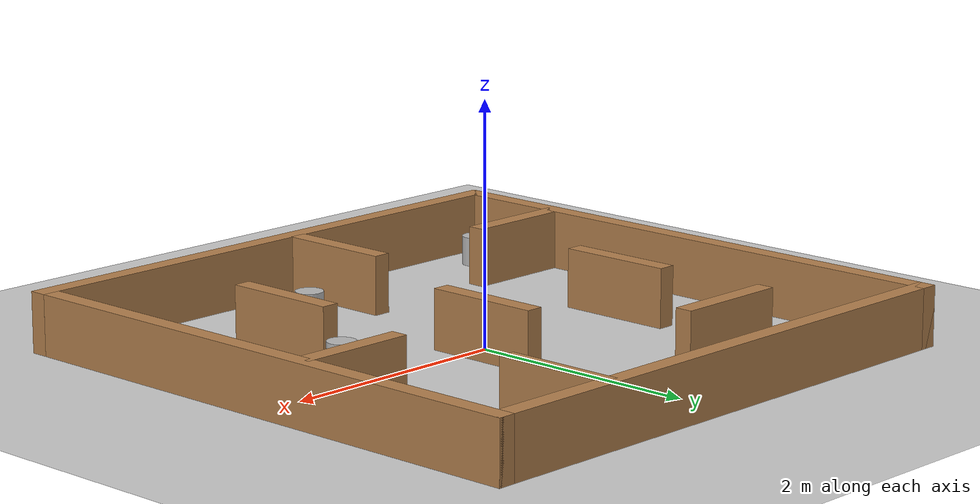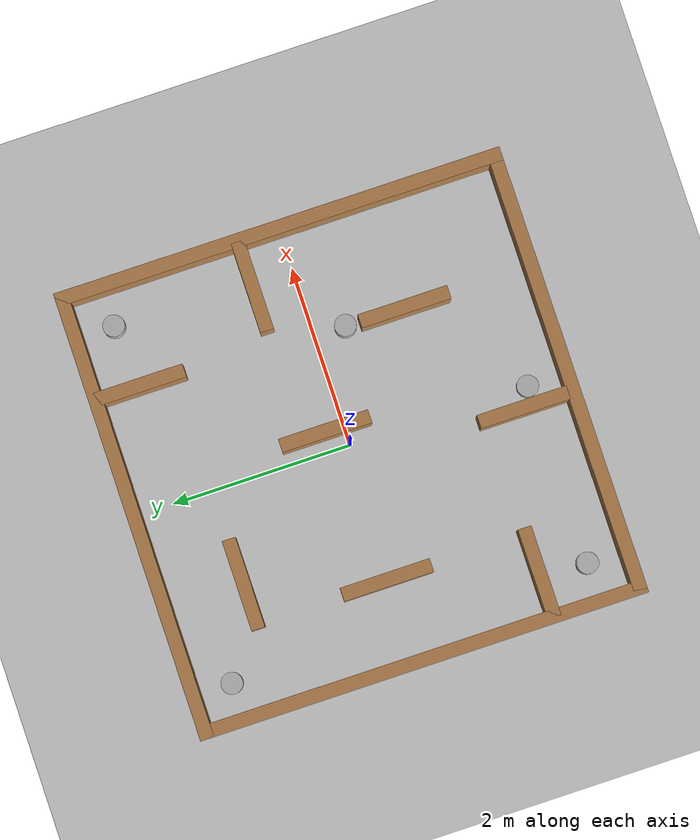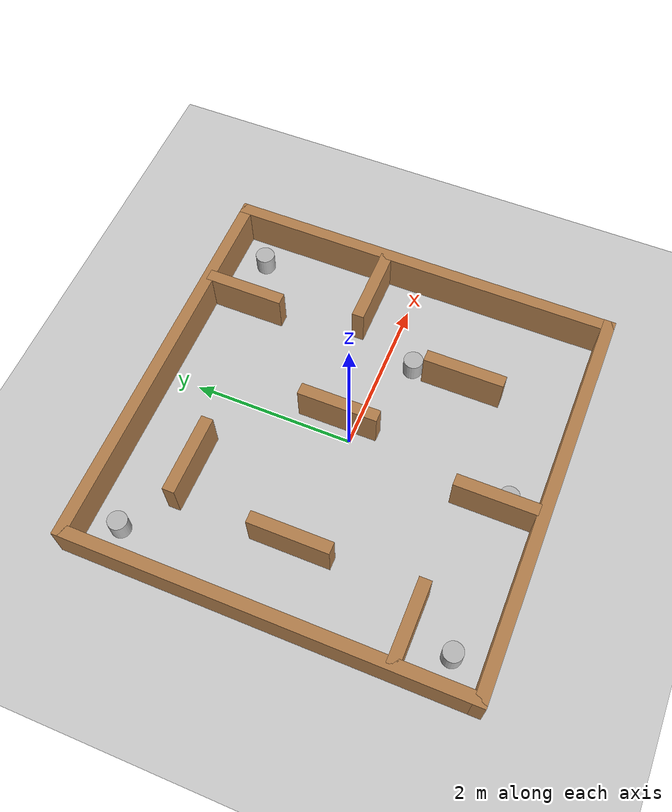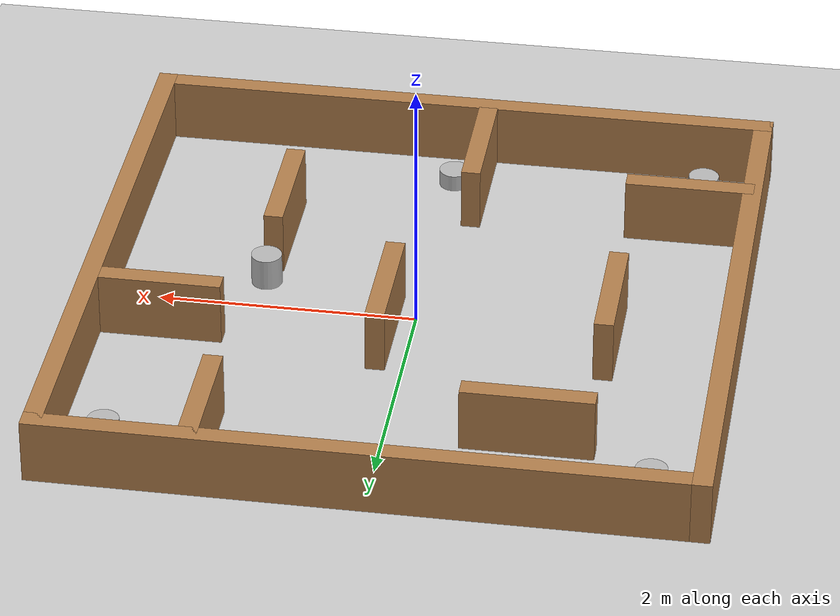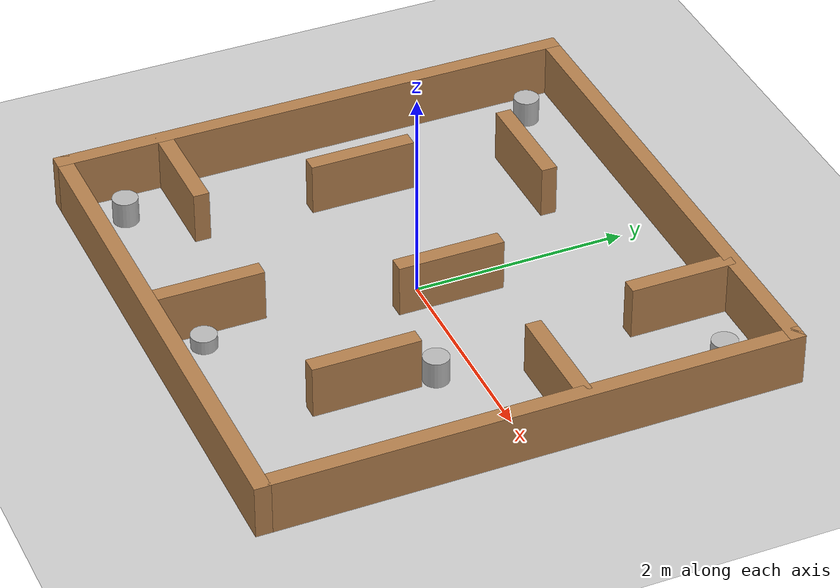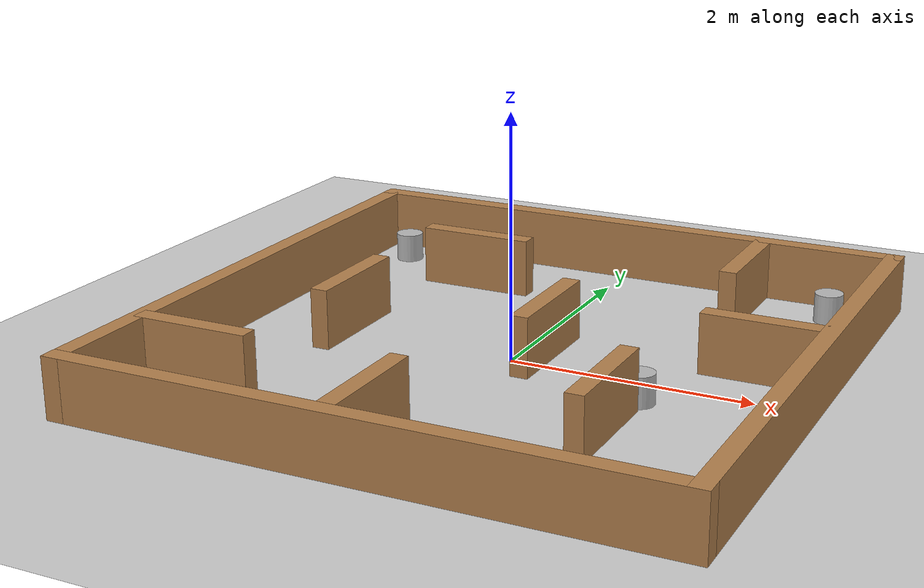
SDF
<sdf version="1.6">
 <world name="default">
  <light name="sun" type="directional">
   <pose>0 0 10 0 -0 0</pose>
   <diffuse>0.8 0.8 0.8 1</diffuse>
   <specular>0.2 0.2 0.2 1</specular>
   <attenuation>
    <range>1000</range>
    <constant>0.9</constant>
    <linear>0.01</linear>
    <quadratic>0.001</quadratic>
   </attenuation>
   <direction>-0.5 0.1 -0.9</direction>
  </light>
  <model name="ground_plane">
   <static>1</static>
   <link name="link">
    <collision name="collision">
     <geometry><plane><normal>0 0 1</normal><size>100 100</size></plane></geometry>
     <surface><friction><ode><mu>100</mu><mu2>50</mu2></ode></friction></surface>
    </collision>
    <visual name="visual">
     <cast_shadows>0</cast_shadows>
     <geometry><plane><normal>0 0 1</normal><size>100 100</size></plane></geometry>
     <material>
      <script><uri>file://media/materials/scripts/gazebo.material</uri><name>Gazebo/Grey</name></script>
     </material>
    </visual>
   </link>
  </model>
  <physics name="default_physics" default="0" type="ode">
   <real_time_update_rate>1000</real_time_update_rate>
   <max_step_size>0.001</max_step_size>
   <real_time_factor>1</real_time_factor>
   <ode>
    <solver>
     <type>quick</type>
     <iters>150</iters>
     <precon_iters>0</precon_iters>
     <sor>1.4</sor>
     <use_dynamic_moi_rescaling>1</use_dynamic_moi_rescaling>
    </solver>
    <constraints>
     <cfm>1e-05</cfm>
     <erp>0.2</erp>
     <contact_max_correcting_vel>2000</contact_max_correcting_vel>
     <contact_surface_layer>0.01</contact_surface_layer>
    </constraints>
   </ode>
  </physics>
  <model name="turtlebot3_plaza">
   <link name="Wall_0">
    <collision name="Wall_0_Collision">
     <geometry><box><size>5 0.15 0.5</size></box></geometry>
     <pose>0 0 0.25 0 -0 0</pose>
    </collision>
    <visual name="Wall_0_Visual">
     <pose>0 0 0.25 0 -0 0</pose>
     <geometry><box><size>5 0.15 0.5</size></box></geometry>
     <material>
      <script><uri>file://media/materials/scripts/gazebo.material</uri><name>Gazebo/Wood</name></script>
      <ambient>1 1 1 1</ambient>
     </material>
    </visual>
    <pose>-2.425 0 0 0 -0 1.5708</pose>
   </link>
   <link name="Wall_11">
    <collision name="Wall_11_Collision">
     <geometry><box><size>1 0.15 0.5</size></box></geometry>
     <pose>0 0 0.25 0 -0 0</pose>
    </collision>
    <visual name="Wall_11_Visual">
     <pose>0 0 0.25 0 -0 0</pose>
     <geometry><box><size>1 0.15 0.5</size></box></geometry>
     <material>
      <script><uri>file://media/materials/scripts/gazebo.material</uri><name>Gazebo/Wood</name></script>
      <ambient>1 1 1 1</ambient>
     </material>
    </visual>
    <pose>-1.937 -1.467 0 0 -0 0</pose>
   </link>
   <link name="Wall_13">
    <collision name="Wall_13_Collision">
     <geometry><box><size>1 0.15 0.5</size></box></geometry>
     <pose>0 0 0.25 0 -0 0</pose>
    </collision>
    <visual name="Wall_13_Visual">
     <pose>0 0 0.25 0 -0 0</pose>
     <geometry><box><size>1 0.15 0.5</size></box></geometry>
     <material>
      <script><uri>file://media/materials/scripts/gazebo.material</uri><name>Gazebo/Wood</name></script>
      <ambient>1 1 1 1</ambient>
     </material>
    </visual>
    <pose>-0.22 -1.866 0 0 0 -1.5708</pose>
   </link>
   <link name="Wall_15">
    <collision name="Wall_15_Collision">
     <geometry><box><size>1 0.15 0.5</size></box></geometry>
     <pose>0 0 0.25 0 -0 0</pose>
    </collision>
    <visual name="Wall_15_Visual">
     <pose>0 0 0.25 0 -0 0</pose>
     <geometry><box><size>1 0.15 0.5</size></box></geometry>
     <material>
      <script><uri>file://media/materials/scripts/gazebo.material</uri><name>Gazebo/Wood</name></script>
      <ambient>1 1 1 1</ambient>
     </material>
    </visual>
    <pose>1.195 -1.002 0 0 -0 1.5708</pose>
   </link>
   <link name="Wall_17">
    <collision name="Wall_17_Collision">
     <geometry><box><size>1 0.15 0.5</size></box></geometry>
     <pose>0 0 0.25 0 -0 0</pose>
    </collision>
    <visual name="Wall_17_Visual">
     <pose>0 0 0.25 0 -0 0</pose>
     <geometry><box><size>1 0.15 0.5</size></box></geometry>
     <material>
      <script><uri>file://media/materials/scripts/gazebo.material</uri><name>Gazebo/Wood</name></script>
      <ambient>1 1 1 1</ambient>
     </material>
    </visual>
    <pose>1.288 1.93 0 0 0 -1.5708</pose>
   </link>
   <link name="Wall_19">
    <collision name="Wall_19_Collision">
     <geometry><box><size>1 0.15 0.5</size></box></geometry>
     <pose>0 0 0.25 0 -0 0</pose>
    </collision>
    <visual name="Wall_19_Visual">
     <pose>0 0 0.25 0 -0 0</pose>
     <geometry><box><size>1 0.15 0.5</size></box></geometry>
     <material>
      <script><uri>file://media/materials/scripts/gazebo.material</uri><name>Gazebo/Wood</name></script>
      <ambient>1 1 1 1</ambient>
     </material>
    </visual>
    <pose>1.91128 0.4632 0 0 -0 0</pose>
   </link>
   <link name="Wall_2">
    <collision name="Wall_2_Collision">
     <geometry><box><size>5 0.15 0.5</size></box></geometry>
     <pose>0 0 0.25 0 -0 0</pose>
    </collision>
    <visual name="Wall_2_Visual">
     <pose>0 0 0.25 0 -0 0</pose>
     <geometry><box><size>5 0.15 0.5</size></box></geometry>
     <material>
      <script><uri>file://media/materials/scripts/gazebo.material</uri><name>Gazebo/Wood</name></script>
      <ambient>1 1 1 1</ambient>
     </material>
    </visual>
    <pose>0 2.425 0 0 -0 0</pose>
   </link>
   <link name="Wall_21">
    <collision name="Wall_21_Collision">
     <geometry><box><size>1 0.15 0.5</size></box></geometry>
     <pose>0 0 0.25 0 -0 0</pose>
    </collision>
    <visual name="Wall_21_Visual">
     <pose>0 0 0.25 0 -0 0</pose>
     <geometry><box><size>1 0.15 0.5</size></box></geometry>
     <material>
      <script><uri>file://media/materials/scripts/gazebo.material</uri><name>Gazebo/Wood</name></script>
      <ambient>1 1 1 1</ambient>
     </material>
    </visual>
    <pose>0.204 0.215 0 0 0 -1.5708</pose>
   </link>
   <link name="Wall_3">
    <collision name="Wall_3_Collision">
     <geometry><box><size>5 0.15 0.5</size></box></geometry>
     <pose>0 0 0.25 0 -0 0</pose>
    </collision>
    <visual name="Wall_3_Visual">
     <pose>0 0 0.25 0 -0 0</pose>
     <geometry><box><size>5 0.15 0.5</size></box></geometry>
     <material>
      <script><uri>file://media/materials/scripts/gazebo.material</uri><name>Gazebo/Wood</name></script>
      <ambient>1 1 1 1</ambient>
     </material>
    </visual>
    <pose>2.425 0 0 0 0 -1.5708</pose>
   </link>
   <link name="Wall_4">
    <collision name="Wall_4_Collision">
     <geometry><box><size>5 0.15 0.5</size></box></geometry>
     <pose>0 0 0.25 0 -0 0</pose>
    </collision>
    <visual name="Wall_4_Visual">
     <pose>0 0 0.25 0 -0 0</pose>
     <geometry><box><size>5 0.15 0.5</size></box></geometry>
     <material>
      <script><uri>file://media/materials/scripts/gazebo.material</uri><name>Gazebo/Wood</name></script>
      <ambient>1 1 1 1</ambient>
     </material>
    </visual>
    <pose>0 -2.425 0 0 -0 3.14159</pose>
   </link>
   <link name="Wall_7">
    <collision name="Wall_7_Collision">
     <geometry><box><size>1 0.15 0.5</size></box></geometry>
     <pose>0 0 0.25 0 -0 0</pose>
    </collision>
    <visual name="Wall_7_Visual">
     <pose>0 0 0.25 0 -0 0</pose>
     <geometry><box><size>1 0.15 0.5</size></box></geometry>
     <material>
      <script><uri>file://media/materials/scripts/gazebo.material</uri><name>Gazebo/Wood</name></script>
      <ambient>1 1 1 1</ambient>
     </material>
    </visual>
    <pose>-1.064 1.548 0 0 -0 0</pose>
   </link>
   <link name="Wall_9">
    <collision name="Wall_9_Collision">
     <geometry><box><size>1 0.15 0.5</size></box></geometry>
     <pose>0 0 0.25 0 -0 0</pose>
    </collision>
    <visual name="Wall_9_Visual">
     <pose>0 0 0.25 0 -0 0</pose>
     <geometry><box><size>1 0.15 0.5</size></box></geometry>
     <material>
      <script><uri>file://media/materials/scripts/gazebo.material</uri><name>Gazebo/Wood</name></script>
      <ambient>1 1 1 1</ambient>
     </material>
    </visual>
    <pose>-1.502 0.092 0 0 0 -1.5708</pose>
   </link>
   <static>1</static>
  </model>
  <model name="obstacle_1">
   <pose>2 2 0.124999 -0 -0 -0</pose>
   <link name="link">
    <collision name="collision">
     <geometry><cylinder><radius>0.12</radius><length>0.25</length></cylinder></geometry>
    </collision>
    <visual name="visual">
     <geometry><cylinder><radius>0.12</radius><length>0.25</length></cylinder></geometry>
    </visual>
    <inertial>
     <inertia><ixx>1</ixx><ixy>0</ixy><ixz>0</ixz><iyy>1</iyy><iyz>0</iyz><izz>1</izz></inertia>
     <mass>1</mass>
    </inertial>
   </link>
  </model>
  <model name="obstacle_2">
   <pose>-2 -2 0.124999 -0 -0 -0</pose>
   <link name="link">
    <collision name="collision">
     <geometry><cylinder><radius>0.12</radius><length>0.25</length></cylinder></geometry>
    </collision>
    <visual name="visual">
     <geometry><cylinder><radius>0.12</radius><length>0.25</length></cylinder></geometry>
    </visual>
    <inertial>
     <inertia><ixx>1</ixx><ixy>0</ixy><ixz>0</ixz><iyy>1</iyy><iyz>0</iyz><izz>1</izz></inertia>
     <mass>1</mass>
    </inertial>
   </link>
   <plugin name="obstacle_2" filename="libobstacle_2.so"/>
  </model>
  <scene><ambient>0.4 0.4 0.4 1</ambient><background>0.7 0.7 0.7 1</background><shadows>1</shadows></scene>
  <gravity>0 0 -9.8</gravity>
  <magnetic_field>6e-06 2.3e-05 -4.2e-05</magnetic_field>
  <atmosphere type="adiabatic"/>
  <audio><device>default</device></audio>
  <spherical_coordinates>
   <surface_model>EARTH_WGS84</surface_model>
   <latitude_deg>0</latitude_deg>
   <longitude_deg>0</longitude_deg>
   <elevation>0</elevation>
   <heading_deg>0</heading_deg>
  </spherical_coordinates>
  <model name="obstacle_1_clone">
   <pose>-2.01922 2 0.124991 0 -0 0</pose>
   <link name="link">
    <collision name="collision">
     <geometry><cylinder><radius>0.12</radius><length>0.25</length></cylinder></geometry>
    </collision>
    <visual name="visual">
     <geometry><cylinder><radius>0.12</radius><length>0.25</length></cylinder></geometry>
    </visual>
    <inertial>
     <inertia><ixx>1</ixx><ixy>0</ixy><ixz>0</ixz><iyy>1</iyy><iyz>0</iyz><izz>1</izz></inertia>
     <mass>1</mass>
    </inertial>
   </link>
  </model>
  <model name="obstacle_1_clone_0">
   <pose>0 -2 0 0 -0 0</pose>
   <link name="link">
    <collision name="collision">
     <geometry><cylinder><radius>0.12</radius><length>0.25</length></cylinder></geometry>
    </collision>
    <visual name="visual">
     <geometry><cylinder><radius>0.12</radius><length>0.25</length></cylinder></geometry>
    </visual>
    <inertial>
     <inertia><ixx>1</ixx><ixy>0</ixy><ixz>0</ixz><iyy>1</iyy><iyz>0</iyz><izz>1</izz></inertia>
     <mass>1</mass>
    </inertial>
   </link>
  </model>
  <model name="obstacle_2_clone">
   <pose>1.22299 -0.35 0.125 0 -0 0</pose>
   <link name="link">
    <collision name="collision">
     <geometry><cylinder><radius>0.12</radius><length>0.25</length></cylinder></geometry>
    </collision>
    <visual name="visual">
     <geometry><cylinder><radius>0.12</radius><length>0.25</length></cylinder></geometry>
    </visual>
    <inertial>
     <inertia><ixx>1</ixx><ixy>0</ixy><ixz>0</ixz><iyy>1</iyy><iyz>0</iyz><izz>1</izz></inertia>
     <mass>1</mass>
    </inertial>
   </link>
   <plugin name="obstacle_2" filename="libobstacle_2.so"/>
  </model>
 </world>
</sdf>
